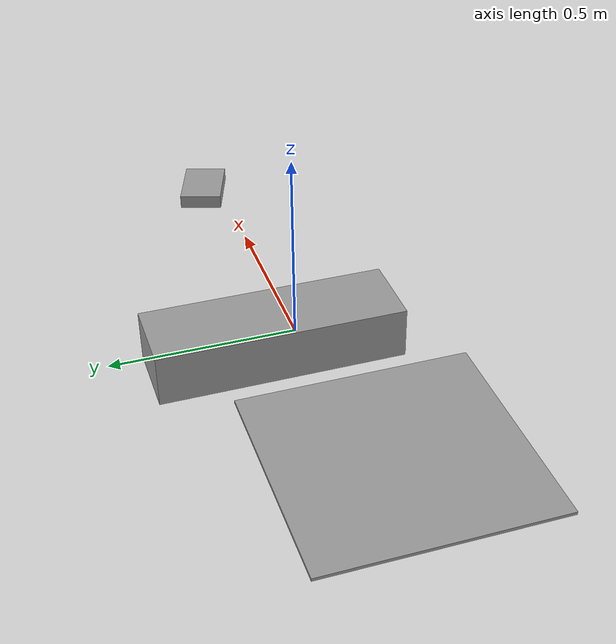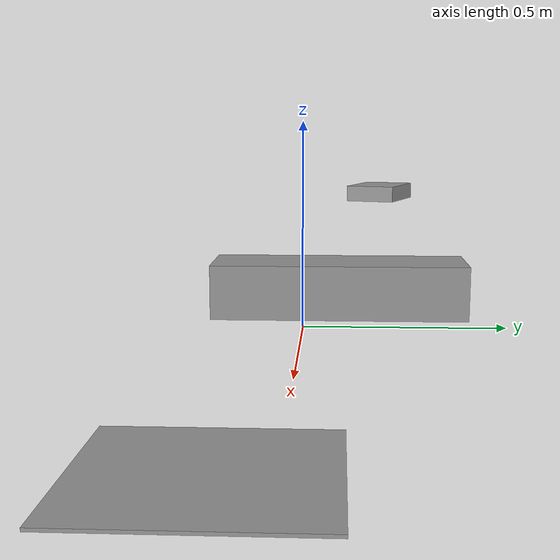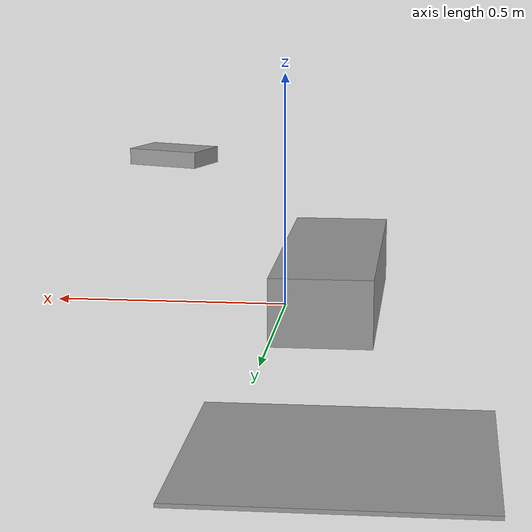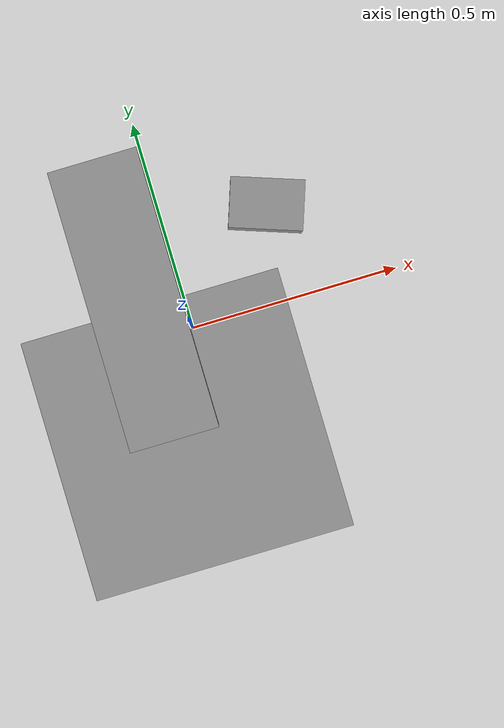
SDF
<?xml version='1.0'?>
<sdf version='1.6'>
  <model name='sim_erc2'>
    <link name='link_4'>
      <inertial>
        <mass>1</mass>
        <inertia>
          <ixx>0.166667</ixx>
          <ixy>0</ixy>
          <ixz>0</ixz>
          <iyy>0.166667</iyy>
          <iyz>0</iyz>
          <izz>0.166667</izz>
        </inertia>
      </inertial>
      <pose frame=''>-0.103252 -0.265142 -0.430422 0 -0 0</pose>
      <visual name='visual'>
        <pose frame=''>0 0 0 0 -0 0</pose>
        <geometry>
          <mesh>
            <uri>/home/uga/ros/erc/src/almasim/models/environment/solid_base.dae</uri>
            <scale>1 1 1</scale>
          </mesh>
        </geometry>
        <material>
          <lighting>1</lighting>
          <script>
            <uri>file://media/materials/scripts/gazebo.material</uri>
            <name>Gazebo/Grey</name>
          </script>
        </material>
        <transparency>0</transparency>
        <cast_shadows>1</cast_shadows>
      </visual>
      <collision name='collision'>
        <laser_retro>0</laser_retro>
        <max_contacts>10</max_contacts>
        <pose frame=''>0 0 0 0 -0 0</pose>
        <geometry>
          <mesh>
            <uri>/home/uga/ros/erc/src/almasim/models/environment/solid_base.dae</uri>
            <scale>1 1 1</scale>
          </mesh>
        </geometry>
        <surface>
          <friction>
            <ode>
              <mu>1</mu>
              <mu2>1</mu2>
              <fdir1>0 0 0</fdir1>
              <slip1>0</slip1>
              <slip2>0</slip2>
            </ode>
            <torsional>
              <coefficient>1</coefficient>
              <patch_radius>0</patch_radius>
              <surface_radius>0</surface_radius>
              <use_patch_radius>1</use_patch_radius>
              <ode>
                <slip>0</slip>
              </ode>
            </torsional>
          </friction>
          <bounce>
            <restitution_coefficient>0</restitution_coefficient>
            <threshold>1e+06</threshold>
          </bounce>
          <contact>
            <collide_without_contact>0</collide_without_contact>
            <collide_without_contact_bitmask>1</collide_without_contact_bitmask>
            <collide_bitmask>1</collide_bitmask>
            <ode>
              <soft_cfm>0</soft_cfm>
              <soft_erp>0.2</soft_erp>
              <kp>1e+13</kp>
              <kd>1</kd>
              <max_vel>0.01</max_vel>
              <min_depth>0</min_depth>
            </ode>
            <bullet>
              <split_impulse>1</split_impulse>
              <split_impulse_penetration_threshold>-0.01</split_impulse_penetration_threshold>
              <soft_cfm>0</soft_cfm>
              <soft_erp>0.2</soft_erp>
              <kp>1e+13</kp>
              <kd>1</kd>
            </bullet>
          </contact>
        </surface>
      </collision>
    </link>
    <link name='link_6'>
      <inertial>
        <mass>1</mass>
        <inertia>
          <ixx>0.166667</ixx>
          <ixy>0</ixy>
          <ixz>0</ixz>
          <iyy>0.166667</iyy>
          <iyz>0</iyz>
          <izz>0.166667</izz>
        </inertia>
      </inertial>
      <pose frame=''>-0.107282 0.089314 0.081293 0 -0 0</pose>
      <visual name='visual'>
        <pose frame=''>0 0 0 0 -0 0</pose>
        <geometry>
          <mesh>
            <uri>/home/uga/ros/erc/src/almasim/models/environment/solid_chassis.dae</uri>
            <scale>1 1 1</scale>
          </mesh>
        </geometry>
        <material>
          <lighting>1</lighting>
          <script>
            <uri>file://media/materials/scripts/gazebo.material</uri>
            <name>Gazebo/Grey</name>
          </script>
        </material>
        <transparency>0</transparency>
        <cast_shadows>1</cast_shadows>
      </visual>
      <collision name='collision'>
        <laser_retro>0</laser_retro>
        <max_contacts>10</max_contacts>
        <pose frame=''>0 0 0 0 -0 0</pose>
        <geometry>
          <mesh>
            <uri>/home/uga/ros/erc/src/almasim/models/environment/solid_chassis.dae</uri>
            <scale>1 1 1</scale>
          </mesh>
        </geometry>
        <surface>
          <friction>
            <ode>
              <mu>1</mu>
              <mu2>1</mu2>
              <fdir1>0 0 0</fdir1>
              <slip1>0</slip1>
              <slip2>0</slip2>
            </ode>
            <torsional>
              <coefficient>1</coefficient>
              <patch_radius>0</patch_radius>
              <surface_radius>0</surface_radius>
              <use_patch_radius>1</use_patch_radius>
              <ode>
                <slip>0</slip>
              </ode>
            </torsional>
          </friction>
          <bounce>
            <restitution_coefficient>0</restitution_coefficient>
            <threshold>1e+06</threshold>
          </bounce>
          <contact>
            <collide_without_contact>0</collide_without_contact>
            <collide_without_contact_bitmask>1</collide_without_contact_bitmask>
            <collide_bitmask>1</collide_bitmask>
            <ode>
              <soft_cfm>0</soft_cfm>
              <soft_erp>0.2</soft_erp>
              <kp>1e+13</kp>
              <kd>1</kd>
              <max_vel>0.01</max_vel>
              <min_depth>0</min_depth>
            </ode>
            <bullet>
              <split_impulse>1</split_impulse>
              <split_impulse_penetration_threshold>-0.01</split_impulse_penetration_threshold>
              <soft_cfm>0</soft_cfm>
              <soft_erp>0.2</soft_erp>
              <kp>1e+13</kp>
              <kd>1</kd>
            </bullet>
          </contact>
        </surface>
      </collision>
    </link>
    <link name='link_8'>
      <inertial>
        <mass>0.000470046</mass>
        <inertia>
          <ixx>4.34391e-07</ixx>
          <ixy>0</ixy>
          <ixz>0</ixz>
          <iyy>8.83855e-07</iyy>
          <iyz>0</iyz>
          <izz>1.23862e-06</izz>
        </inertia>
        <pose frame=''>0 0 0 0 -0 0</pose>
      </inertial>
      <pose frame=''>0.210535 0.175827 0.349129 0 0 -0.335226</pose>
      <visual name='visual'>
        <pose frame=''>0 0 0 0 -0 0</pose>
        <geometry>
          <box>
            <size>0.146792 0.100366 0.031882</size>
          </box>
        </geometry>
        <material>
          <lighting>1</lighting>
          <script>
            <uri>file://media/materials/scripts/gazebo.material</uri>
            <name>Gazebo/Grey</name>
          </script>
        </material>
        <transparency>0</transparency>
        <cast_shadows>1</cast_shadows>
      </visual>
      <collision name='collision'>
        <laser_retro>0</laser_retro>
        <max_contacts>10</max_contacts>
        <pose frame=''>0 0 0 0 -0 0</pose>
        <geometry>
          <box>
            <size>0.146792 0.100366 0.031882</size>
          </box>
        </geometry>
        <surface>
          <friction>
            <ode>
              <mu>1</mu>
              <mu2>1</mu2>
              <fdir1>0 0 0</fdir1>
              <slip1>0</slip1>
              <slip2>0</slip2>
            </ode>
            <torsional>
              <coefficient>1</coefficient>
              <patch_radius>0</patch_radius>
              <surface_radius>0</surface_radius>
              <use_patch_radius>1</use_patch_radius>
              <ode>
                <slip>0</slip>
              </ode>
            </torsional>
          </friction>
          <bounce>
            <restitution_coefficient>0</restitution_coefficient>
            <threshold>1e+06</threshold>
          </bounce>
          <contact>
            <collide_without_contact>0</collide_without_contact>
            <collide_without_contact_bitmask>1</collide_without_contact_bitmask>
            <collide_bitmask>1</collide_bitmask>
            <ode>
              <soft_cfm>0</soft_cfm>
              <soft_erp>0.2</soft_erp>
              <kp>1e+13</kp>
              <kd>1</kd>
              <max_vel>0.01</max_vel>
              <min_depth>0</min_depth>
            </ode>
            <bullet>
              <split_impulse>1</split_impulse>
              <split_impulse_penetration_threshold>-0.01</split_impulse_penetration_threshold>
              <soft_cfm>0</soft_cfm>
              <soft_erp>0.2</soft_erp>
              <kp>1e+13</kp>
              <kd>1</kd>
            </bullet>
          </contact>
        </surface>
      </collision>
    </link>
    <static>1</static>
    <allow_auto_disable>1</allow_auto_disable>
  </model>
</sdf>
